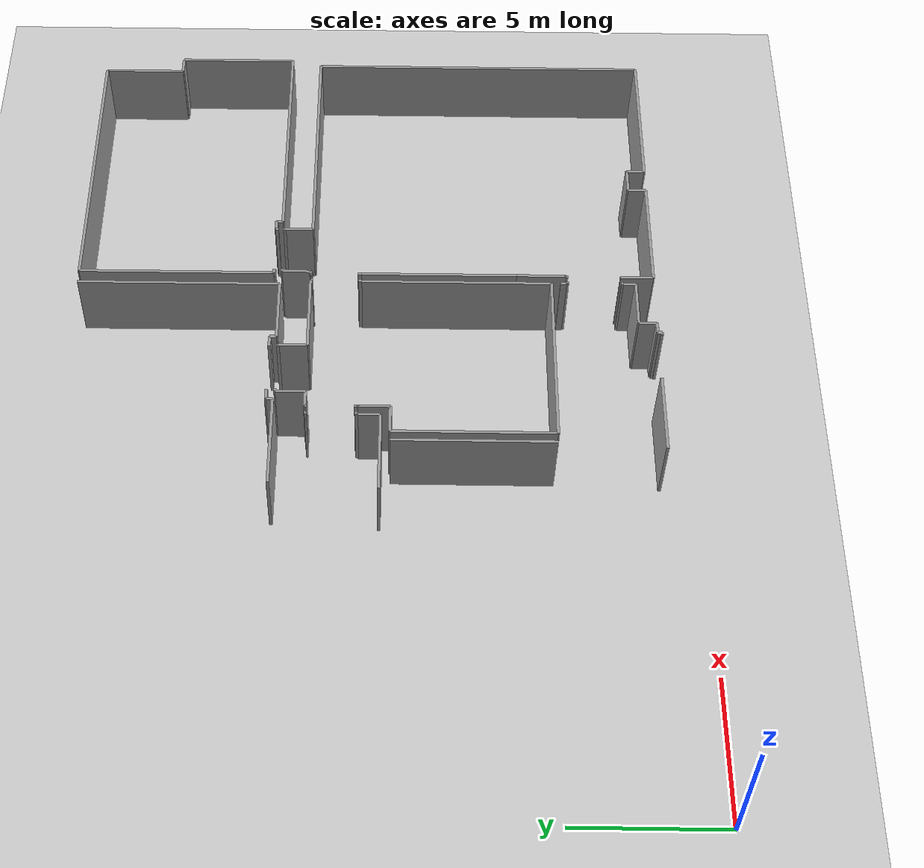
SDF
<sdf version="1.6">
 <world name="default">
  <model name="ground_plane">
   <static>1</static>
   <link name="link">
    <collision name="collision">
     <geometry><plane><normal>0 0 1</normal><size>100 100</size></plane></geometry>
     <surface><friction><ode><mu>100</mu><mu2>50</mu2></ode></friction></surface>
    </collision>
    <visual name="visual">
     <cast_shadows>0</cast_shadows>
     <geometry><plane><normal>0 0 1</normal><size>100 100</size></plane></geometry>
     <material>
      <script><uri>file://media/materials/scripts/gazebo.material</uri><name>Gazebo/Grey</name></script>
     </material>
    </visual>
   </link>
  </model>
  <model name="0510032259_A_40_1_101">
   <static>1</static>
   <link name="Wall_66">
    <collision name="Wall_66_Collision">
     <geometry><box><size>0.210516954428 0.1 2.5</size></box></geometry>
     <pose>0.105258477214 0 1.25 0 0 0</pose>
    </collision>
    <visual name="Wall_66_Visual">
     <pose>0.105258477214 0 1.25 0 0 0</pose>
     <geometry><box><size>0.210516954428 0.1 2.5</size></box></geometry>
     <material>
      <script><uri>file://media/materials/scripts/gazebo.material</uri><name>Gazebo/Grey</name></script>
      <ambient>1 1 1 1</ambient>
     </material>
    </visual>
    <pose>48.824941876 -16.4428097725 0 0 0 -1.57079632679</pose>
   </link>
   <link name="Wall_67">
    <collision name="Wall_67_Collision">
     <geometry><box><size>0.0287126322877 0.1 2.5</size></box></geometry>
     <pose>0.0143563161439 0 1.25 0 0 0</pose>
    </collision>
    <visual name="Wall_67_Visual">
     <pose>0.0143563161439 0 1.25 0 0 0</pose>
     <geometry><box><size>0.0287126322877 0.1 2.5</size></box></geometry>
     <material>
      <script><uri>file://media/materials/scripts/gazebo.material</uri><name>Gazebo/Grey</name></script>
      <ambient>1 1 1 1</ambient>
     </material>
    </visual>
    <pose>48.824941876 -16.6533267269 0 0 0 0.0</pose>
   </link>
   <link name="Wall_68">
    <collision name="Wall_68_Collision">
     <geometry><box><size>0.0763552743581 0.1 2.5</size></box></geometry>
     <pose>0.038177637179 0 1.25 0 0 0</pose>
    </collision>
    <visual name="Wall_68_Visual">
     <pose>0.038177637179 0 1.25 0 0 0</pose>
     <geometry><box><size>0.0763552743581 0.1 2.5</size></box></geometry>
     <material>
      <script><uri>file://media/materials/scripts/gazebo.material</uri><name>Gazebo/Grey</name></script>
      <ambient>1 1 1 1</ambient>
     </material>
    </visual>
    <pose>48.8536545083 -16.6533267269 0 0 0 -1.57079632679</pose>
   </link>
   <link name="Wall_69">
    <collision name="Wall_69_Collision">
     <geometry><box><size>0.0694947339 0.1 2.5</size></box></geometry>
     <pose>0.03474736695 0 1.25 0 0 0</pose>
    </collision>
    <visual name="Wall_69_Visual">
     <pose>0.03474736695 0 1.25 0 0 0</pose>
     <geometry><box><size>0.0694947339 0.1 2.5</size></box></geometry>
     <material>
      <script><uri>file://media/materials/scripts/gazebo.material</uri><name>Gazebo/Grey</name></script>
      <ambient>1 1 1 1</ambient>
     </material>
    </visual>
    <pose>48.8536545083 -18.5199019197 0 0 0 -1.57079632679</pose>
   </link>
   <link name="Wall_70">
    <collision name="Wall_70_Collision">
     <geometry><box><size>0.0226143741027 0.1 2.5</size></box></geometry>
     <pose>0.0113071870514 0 1.25 0 0 0</pose>
    </collision>
    <visual name="Wall_70_Visual">
     <pose>0.0113071870514 0 1.25 0 0 0</pose>
     <geometry><box><size>0.0226143741027 0.1 2.5</size></box></geometry>
     <material>
      <script><uri>file://media/materials/scripts/gazebo.material</uri><name>Gazebo/Grey</name></script>
      <ambient>1 1 1 1</ambient>
     </material>
    </visual>
    <pose>48.8536545083 -18.5893966536 0 0 0 3.14159265359</pose>
   </link>
   <link name="Wall_71">
    <collision name="Wall_71_Collision">
     <geometry><box><size>0.416841356354 0.1 2.5</size></box></geometry>
     <pose>0.208420678177 0 1.25 0 0 0</pose>
    </collision>
    <visual name="Wall_71_Visual">
     <pose>0.208420678177 0 1.25 0 0 0</pose>
     <geometry><box><size>0.416841356354 0.1 2.5</size></box></geometry>
     <material>
      <script><uri>file://media/materials/scripts/gazebo.material</uri><name>Gazebo/Grey</name></script>
      <ambient>1 1 1 1</ambient>
     </material>
    </visual>
    <pose>48.8310401342 -18.5893966536 0 0 0 -1.57079632679</pose>
   </link>
   <link name="Wall_72">
    <collision name="Wall_72_Collision">
     <geometry><box><size>1.67587757747 0.1 2.5</size></box></geometry>
     <pose>0.837938788733 0 1.25 0 0 0</pose>
    </collision>
    <visual name="Wall_72_Visual">
     <pose>0.837938788733 0 1.25 0 0 0</pose>
     <geometry><box><size>1.67587757747 0.1 2.5</size></box></geometry>
     <material>
      <script><uri>file://media/materials/scripts/gazebo.material</uri><name>Gazebo/Grey</name></script>
      <ambient>1 1 1 1</ambient>
     </material>
    </visual>
    <pose>48.8310401342 -19.0062380099 0 0 0 3.14159265359</pose>
   </link>
   <link name="Wall_73">
    <collision name="Wall_73_Collision">
     <geometry><box><size>0.605887360089 0.1 2.5</size></box></geometry>
     <pose>0.302943680045 0 1.25 0 0 0</pose>
    </collision>
    <visual name="Wall_73_Visual">
     <pose>0.302943680045 0 1.25 0 0 0</pose>
     <geometry><box><size>0.605887360089 0.1 2.5</size></box></geometry>
     <material>
      <script><uri>file://media/materials/scripts/gazebo.material</uri><name>Gazebo/Grey</name></script>
      <ambient>1 1 1 1</ambient>
     </material>
    </visual>
    <pose>47.1551625567 -19.0062380099 0 0 0 -1.57079632679</pose>
   </link>
   <link name="Wall_74">
    <collision name="Wall_74_Collision">
     <geometry><box><size>0.401722757937 0.1 2.5</size></box></geometry>
     <pose>0.200861378969 0 1.25 0 0 0</pose>
    </collision>
    <visual name="Wall_74_Visual">
     <pose>0.200861378969 0 1.25 0 0 0</pose>
     <geometry><box><size>0.401722757937 0.1 2.5</size></box></geometry>
     <material>
      <script><uri>file://media/materials/scripts/gazebo.material</uri><name>Gazebo/Grey</name></script>
      <ambient>1 1 1 1</ambient>
     </material>
    </visual>
    <pose>47.1551625567 -19.61212537 0 0 0 3.14159265359</pose>
   </link>
   <link name="Wall_75">
    <collision name="Wall_75_Collision">
     <geometry><box><size>0.140768126437 0.1 2.5</size></box></geometry>
     <pose>0.0703840632186 0 1.25 0 0 0</pose>
    </collision>
    <visual name="Wall_75_Visual">
     <pose>0.0703840632186 0 1.25 0 0 0</pose>
     <geometry><box><size>0.140768126437 0.1 2.5</size></box></geometry>
     <material>
      <script><uri>file://media/materials/scripts/gazebo.material</uri><name>Gazebo/Grey</name></script>
      <ambient>1 1 1 1</ambient>
     </material>
    </visual>
    <pose>46.7534397988 -19.61212537 0 0 0 -1.57079632679</pose>
   </link>
   <link name="Wall_76">
    <collision name="Wall_76_Collision">
     <geometry><box><size>0.0847403793625 0.1 2.5</size></box></geometry>
     <pose>0.0423701896812 0 1.25 0 0 0</pose>
    </collision>
    <visual name="Wall_76_Visual">
     <pose>0.0423701896812 0 1.25 0 0 0</pose>
     <geometry><box><size>0.0847403793625 0.1 2.5</size></box></geometry>
     <material>
      <script><uri>file://media/materials/scripts/gazebo.material</uri><name>Gazebo/Grey</name></script>
      <ambient>1 1 1 1</ambient>
     </material>
    </visual>
    <pose>46.7534397988 -19.7528934965 0 0 0 3.14159265359</pose>
   </link>
   <link name="Wall_79">
    <collision name="Wall_79_Collision">
     <geometry><box><size>2.7982111776 0.1 2.5</size></box></geometry>
     <pose>1.3991055888 0 1.25 0 0 0</pose>
    </collision>
    <visual name="Wall_79_Visual">
     <pose>1.3991055888 0 1.25 0 0 0</pose>
     <geometry><box><size>2.7982111776 0.1 2.5</size></box></geometry>
     <material>
      <script><uri>file://media/materials/scripts/gazebo.material</uri><name>Gazebo/Grey</name></script>
      <ambient>1 1 1 1</ambient>
     </material>
    </visual>
    <pose>44.8505291509 -19.6128876523 0 0 0 3.14159265359</pose>
   </link>
   <link name="Wall_169">
    <collision name="Wall_169_Collision">
     <geometry><box><size>5.394925741 0.1 2.5</size></box></geometry>
     <pose>2.6974628705 0 1.25 0 0 0</pose>
    </collision>
    <visual name="Wall_169_Visual">
     <pose>2.6974628705 0 1.25 0 0 0</pose>
     <geometry><box><size>5.394925741 0.1 2.5</size></box></geometry>
     <material>
      <script><uri>file://media/materials/scripts/gazebo.material</uri><name>Gazebo/Grey</name></script>
      <ambient>1 1 1 1</ambient>
     </material>
    </visual>
    <pose>42.249622035 -10.7335696408 0 0 0 -1.57079632679</pose>
   </link>
   <link name="Wall_201">
    <collision name="Wall_201_Collision">
     <geometry><box><size>0.0664456048075 0.1 2.5</size></box></geometry>
     <pose>0.0332228024037 0 1.25 0 0 0</pose>
    </collision>
    <visual name="Wall_201_Visual">
     <pose>0.0332228024037 0 1.25 0 0 0</pose>
     <geometry><box><size>0.0664456048075 0.1 2.5</size></box></geometry>
     <material>
      <script><uri>file://media/materials/scripts/gazebo.material</uri><name>Gazebo/Grey</name></script>
      <ambient>1 1 1 1</ambient>
     </material>
    </visual>
    <pose>43.2753998806 -7.94374356824 0 0 0 -1.57079632679</pose>
   </link>
   <link name="Wall_202">
    <collision name="Wall_202_Collision">
     <geometry><box><size>0.0997319307339 0.1 2.5</size></box></geometry>
     <pose>0.049865965367 0 1.25 0 0 0</pose>
    </collision>
    <visual name="Wall_202_Visual">
     <pose>0.049865965367 0 1.25 0 0 0</pose>
     <geometry><box><size>0.0997319307339 0.1 2.5</size></box></geometry>
     <material>
      <script><uri>file://media/materials/scripts/gazebo.material</uri><name>Gazebo/Grey</name></script>
      <ambient>1 1 1 1</ambient>
     </material>
    </visual>
    <pose>43.2753998806 -9.5830315966 0 0 0 -1.57079632679</pose>
   </link>
   <link name="Wall_203">
    <collision name="Wall_203_Collision">
     <geometry><box><size>0.0331592788809 0.1 2.5</size></box></geometry>
     <pose>0.0165796394405 0 1.25 0 0 0</pose>
    </collision>
    <visual name="Wall_203_Visual">
     <pose>0.0165796394405 0 1.25 0 0 0</pose>
     <geometry><box><size>0.0331592788809 0.1 2.5</size></box></geometry>
     <material>
      <script><uri>file://media/materials/scripts/gazebo.material</uri><name>Gazebo/Grey</name></script>
      <ambient>1 1 1 1</ambient>
     </material>
    </visual>
    <pose>43.2753998806 -9.68276352733 0 0 0 3.14159265359</pose>
   </link>
   <link name="Wall_204">
    <collision name="Wall_204_Collision">
     <geometry><box><size>0.727344335607 0.1 2.5</size></box></geometry>
     <pose>0.363672167804 0 1.25 0 0 0</pose>
    </collision>
    <visual name="Wall_204_Visual">
     <pose>0.363672167804 0 1.25 0 0 0</pose>
     <geometry><box><size>0.727344335607 0.1 2.5</size></box></geometry>
     <material>
      <script><uri>file://media/materials/scripts/gazebo.material</uri><name>Gazebo/Grey</name></script>
      <ambient>1 1 1 1</ambient>
     </material>
    </visual>
    <pose>43.2422406017 -9.68276352733 0 0 0 -1.57079632679</pose>
   </link>
   <link name="Wall_205">
    <collision name="Wall_205_Collision">
     <geometry><box><size>2.86634063001 0.1 2.5</size></box></geometry>
     <pose>1.43317031501 0 1.25 0 0 0</pose>
    </collision>
    <visual name="Wall_205_Visual">
     <pose>1.43317031501 0 1.25 0 0 0</pose>
     <geometry><box><size>2.86634063001 0.1 2.5</size></box></geometry>
     <material>
      <script><uri>file://media/materials/scripts/gazebo.material</uri><name>Gazebo/Grey</name></script>
      <ambient>1 1 1 1</ambient>
     </material>
    </visual>
    <pose>43.2422406017 -10.4101078629 0 0 0 3.13684999157</pose>
   </link>
   <link name="Wall_206">
    <collision name="Wall_206_Collision">
     <geometry><box><size>5.40928205715 0.1 2.5</size></box></geometry>
     <pose>2.70464102857 0 1.25 0 0 0</pose>
    </collision>
    <visual name="Wall_206_Visual">
     <pose>2.70464102857 0 1.25 0 0 0</pose>
     <geometry><box><size>5.40928205715 0.1 2.5</size></box></geometry>
     <material>
      <script><uri>file://media/materials/scripts/gazebo.material</uri><name>Gazebo/Grey</name></script>
      <ambient>1 1 1 1</ambient>
     </material>
    </visual>
    <pose>42.5854073764 -16.1353559223 0 0 0 1.57079632679</pose>
   </link>
   <link name="Wall_207">
    <collision name="Wall_207_Collision">
     <geometry><box><size>0.980930238467 0.1 2.5</size></box></geometry>
     <pose>0.490465119234 0 1.25 0 0 0</pose>
    </collision>
    <visual name="Wall_207_Visual">
     <pose>0.490465119234 0 1.25 0 0 0</pose>
     <geometry><box><size>0.980930238467 0.1 2.5</size></box></geometry>
     <material>
      <script><uri>file://media/materials/scripts/gazebo.material</uri><name>Gazebo/Grey</name></script>
      <ambient>1 1 1 1</ambient>
     </material>
    </visual>
    <pose>42.5854073764 -10.7260738652 0 0 0 0.0</pose>
   </link>
   <link name="Wall_208">
    <collision name="Wall_208_Collision">
     <geometry><box><size>1.06554357078 0.1 2.5</size></box></geometry>
     <pose>0.532771785392 0 1.25 0 0 0</pose>
    </collision>
    <visual name="Wall_208_Visual">
     <pose>0.532771785392 0 1.25 0 0 0</pose>
     <geometry><box><size>1.06554357078 0.1 2.5</size></box></geometry>
     <material>
      <script><uri>file://media/materials/scripts/gazebo.material</uri><name>Gazebo/Grey</name></script>
      <ambient>1 1 1 1</ambient>
     </material>
    </visual>
    <pose>43.5663376148 -10.7260738652 0 0 0 1.57079632679</pose>
   </link>
   <link name="Wall_209">
    <collision name="Wall_209_Collision">
     <geometry><box><size>0.0154997395536 0.1 2.5</size></box></geometry>
     <pose>0.00774986977679 0 1.25 0 0 0</pose>
    </collision>
    <visual name="Wall_209_Visual">
     <pose>0.00774986977679 0 1.25 0 0 0</pose>
     <geometry><box><size>0.0154997395536 0.1 2.5</size></box></geometry>
     <material>
      <script><uri>file://media/materials/scripts/gazebo.material</uri><name>Gazebo/Grey</name></script>
      <ambient>1 1 1 1</ambient>
     </material>
    </visual>
    <pose>43.5663376148 -9.66053029437 0 0 0 3.14159265359</pose>
   </link>
   <link name="Wall_210">
    <collision name="Wall_210_Collision">
     <geometry><box><size>0.104432671418 0.1 2.5</size></box></geometry>
     <pose>0.0522163357091 0 1.25 0 0 0</pose>
    </collision>
    <visual name="Wall_210_Visual">
     <pose>0.0522163357091 0 1.25 0 0 0</pose>
     <geometry><box><size>0.104432671418 0.1 2.5</size></box></geometry>
     <material>
      <script><uri>file://media/materials/scripts/gazebo.material</uri><name>Gazebo/Grey</name></script>
      <ambient>1 1 1 1</ambient>
     </material>
    </visual>
    <pose>43.5508378753 -9.66053029437 0 0 0 1.57079632679</pose>
   </link>
   <link name="Wall_211">
    <collision name="Wall_211_Collision">
     <geometry><box><size>0.0471344538883 0.1 2.5</size></box></geometry>
     <pose>0.0235672269441 0 1.25 0 0 0</pose>
    </collision>
    <visual name="Wall_211_Visual">
     <pose>0.0235672269441 0 1.25 0 0 0</pose>
     <geometry><box><size>0.0471344538883 0.1 2.5</size></box></geometry>
     <material>
      <script><uri>file://media/materials/scripts/gazebo.material</uri><name>Gazebo/Grey</name></script>
      <ambient>1 1 1 1</ambient>
     </material>
    </visual>
    <pose>43.5508378753 -7.99202144554 0 0 0 1.57079632679</pose>
   </link>
   <link name="Wall_212">
    <collision name="Wall_212_Collision">
     <geometry><box><size>0.577301774847 0.1 2.5</size></box></geometry>
     <pose>0.288650887424 0 1.25 0 0 0</pose>
    </collision>
    <visual name="Wall_212_Visual">
     <pose>0.288650887424 0 1.25 0 0 0</pose>
     <geometry><box><size>0.577301774847 0.1 2.5</size></box></geometry>
     <material>
      <script><uri>file://media/materials/scripts/gazebo.material</uri><name>Gazebo/Grey</name></script>
      <ambient>1 1 1 1</ambient>
     </material>
    </visual>
    <pose>43.5508378753 -7.94488699165 0 0 0 0.0</pose>
   </link>
   <link name="Wall_213">
    <collision name="Wall_213_Collision">
     <geometry><box><size>0.988934202335 0.1 2.5</size></box></geometry>
     <pose>0.494467101168 0 1.25 0 0 0</pose>
    </collision>
    <visual name="Wall_213_Visual">
     <pose>0.494467101168 0 1.25 0 0 0</pose>
     <geometry><box><size>0.988934202335 0.1 2.5</size></box></geometry>
     <material>
      <script><uri>file://media/materials/scripts/gazebo.material</uri><name>Gazebo/Grey</name></script>
      <ambient>1 1 1 1</ambient>
     </material>
    </visual>
    <pose>44.1281396501 -7.94488699165 0 0 0 1.57079632679</pose>
   </link>
   <link name="Wall_214">
    <collision name="Wall_214_Collision">
     <geometry><box><size>0.097063942778 0.1 2.5</size></box></geometry>
     <pose>0.048531971389 0 1.25 0 0 0</pose>
    </collision>
    <visual name="Wall_214_Visual">
     <pose>0.048531971389 0 1.25 0 0 0</pose>
     <geometry><box><size>0.097063942778 0.1 2.5</size></box></geometry>
     <material>
      <script><uri>file://media/materials/scripts/gazebo.material</uri><name>Gazebo/Grey</name></script>
      <ambient>1 1 1 1</ambient>
     </material>
    </visual>
    <pose>44.1281396501 -6.95595278932 0 0 0 0.0</pose>
   </link>
   <link name="Wall_215">
    <collision name="Wall_215_Collision">
     <geometry><box><size>0.0598391584404 0.1 2.5</size></box></geometry>
     <pose>0.0299195792202 0 1.25 0 0 0</pose>
    </collision>
    <visual name="Wall_215_Visual">
     <pose>0.0299195792202 0 1.25 0 0 0</pose>
     <geometry><box><size>0.0598391584404 0.1 2.5</size></box></geometry>
     <material>
      <script><uri>file://media/materials/scripts/gazebo.material</uri><name>Gazebo/Grey</name></script>
      <ambient>1 1 1 1</ambient>
     </material>
    </visual>
    <pose>45.9823912795 -6.95595278932 0 0 0 0.0</pose>
   </link>
   <link name="Wall_216">
    <collision name="Wall_216_Collision">
     <geometry><box><size>0.980676144376 0.1 2.5</size></box></geometry>
     <pose>0.490338072188 0 1.25 0 0 0</pose>
    </collision>
    <visual name="Wall_216_Visual">
     <pose>0.490338072188 0 1.25 0 0 0</pose>
     <geometry><box><size>0.980676144376 0.1 2.5</size></box></geometry>
     <material>
      <script><uri>file://media/materials/scripts/gazebo.material</uri><name>Gazebo/Grey</name></script>
      <ambient>1 1 1 1</ambient>
     </material>
    </visual>
    <pose>46.0422304379 -6.95595278932 0 0 0 -1.57079632679</pose>
   </link>
   <link name="Wall_217">
    <collision name="Wall_217_Collision">
     <geometry><box><size>2.80265782419 0.1 2.5</size></box></geometry>
     <pose>1.4013289121 0 1.25 0 0 0</pose>
    </collision>
    <visual name="Wall_217_Visual">
     <pose>1.4013289121 0 1.25 0 0 0</pose>
     <geometry><box><size>2.80265782419 0.1 2.5</size></box></geometry>
     <material>
      <script><uri>file://media/materials/scripts/gazebo.material</uri><name>Gazebo/Grey</name></script>
      <ambient>1 1 1 1</ambient>
     </material>
    </visual>
    <pose>46.0422304379 -7.93662893369 0 0 0 0.0</pose>
   </link>
   <link name="Wall_218">
    <collision name="Wall_218_Collision">
     <geometry><box><size>0.0766093684491 0.1 2.5</size></box></geometry>
     <pose>0.0383046842246 0 1.25 0 0 0</pose>
    </collision>
    <visual name="Wall_218_Visual">
     <pose>0.0383046842246 0 1.25 0 0 0</pose>
     <geometry><box><size>0.0766093684491 0.1 2.5</size></box></geometry>
     <material>
      <script><uri>file://media/materials/scripts/gazebo.material</uri><name>Gazebo/Grey</name></script>
      <ambient>1 1 1 1</ambient>
     </material>
    </visual>
    <pose>48.8448882621 -7.93662893369 0 0 0 -1.57079632679</pose>
   </link>
   <link name="Wall_219">
    <collision name="Wall_219_Collision">
     <geometry><box><size>0.104432671418 0.1 2.5</size></box></geometry>
     <pose>0.0522163357091 0 1.25 0 0 0</pose>
    </collision>
    <visual name="Wall_219_Visual">
     <pose>0.0522163357091 0 1.25 0 0 0</pose>
     <geometry><box><size>0.104432671418 0.1 2.5</size></box></geometry>
     <material>
      <script><uri>file://media/materials/scripts/gazebo.material</uri><name>Gazebo/Grey</name></script>
      <ambient>1 1 1 1</ambient>
     </material>
    </visual>
    <pose>48.8448882621 -9.57985542046 0 0 0 -1.57079632679</pose>
   </link>
   <link name="Wall_220">
    <collision name="Wall_220_Collision">
     <geometry><box><size>0.0249012209221 0.1 2.5</size></box></geometry>
     <pose>0.0124506104611 0 1.25 0 0 0</pose>
    </collision>
    <visual name="Wall_220_Visual">
     <pose>0.0124506104611 0 1.25 0 0 0</pose>
     <geometry><box><size>0.0249012209221 0.1 2.5</size></box></geometry>
     <material>
      <script><uri>file://media/materials/scripts/gazebo.material</uri><name>Gazebo/Grey</name></script>
      <ambient>1 1 1 1</ambient>
     </material>
    </visual>
    <pose>48.8448882621 -9.68428809188 0 0 0 3.14159265359</pose>
   </link>
   <link name="Wall_221">
    <collision name="Wall_221_Collision">
     <geometry><box><size>6.45665790042 0.1 2.5</size></box></geometry>
     <pose>3.22832895021 0 1.25 0 0 0</pose>
    </collision>
    <visual name="Wall_221_Visual">
     <pose>3.22832895021 0 1.25 0 0 0</pose>
     <geometry><box><size>6.45665790042 0.1 2.5</size></box></geometry>
     <material>
      <script><uri>file://media/materials/scripts/gazebo.material</uri><name>Gazebo/Grey</name></script>
      <ambient>1 1 1 1</ambient>
     </material>
    </visual>
    <pose>48.8199870412 -9.68428809188 0 0 0 -1.57079632679</pose>
   </link>
   <link name="Wall_222">
    <collision name="Wall_222_Collision">
     <geometry><box><size>6.23458217094 0.1 2.5</size></box></geometry>
     <pose>3.11729108547 0 1.25 0 0 0</pose>
    </collision>
    <visual name="Wall_222_Visual">
     <pose>3.11729108547 0 1.25 0 0 0</pose>
     <geometry><box><size>6.23458217094 0.1 2.5</size></box></geometry>
     <material>
      <script><uri>file://media/materials/scripts/gazebo.material</uri><name>Gazebo/Grey</name></script>
      <ambient>1 1 1 1</ambient>
     </material>
    </visual>
    <pose>48.8199870412 -16.1409459923 0 0 0 3.14069603043</pose>
   </link>
   <link name="Wall_225">
    <collision name="Wall_225_Collision">
     <geometry><box><size>6.8897612786 0.1 2.5</size></box></geometry>
     <pose>3.4448806393 0 1.25 0 0 0</pose>
    </collision>
    <visual name="Wall_225_Visual">
     <pose>3.4448806393 0 1.25 0 0 0</pose>
     <geometry><box><size>6.8897612786 0.1 2.5</size></box></geometry>
     <material>
      <script><uri>file://media/materials/scripts/gazebo.material</uri><name>Gazebo/Grey</name></script>
      <ambient>1 1 1 1</ambient>
     </material>
    </visual>
    <pose>48.6667683043 -0.0 0 0 0 -1.57079632679</pose>
   </link>
   <link name="Wall_226">
    <collision name="Wall_226_Collision">
     <geometry><box><size>2.27312573846 0.1 2.5</size></box></geometry>
     <pose>1.13656286923 0 1.25 0 0 0</pose>
    </collision>
    <visual name="Wall_226_Visual">
     <pose>1.13656286923 0 1.25 0 0 0</pose>
     <geometry><box><size>2.27312573846 0.1 2.5</size></box></geometry>
     <material>
      <script><uri>file://media/materials/scripts/gazebo.material</uri><name>Gazebo/Grey</name></script>
      <ambient>1 1 1 1</ambient>
     </material>
    </visual>
    <pose>48.6667683043 -6.8897612786 0 0 0 3.14159265359</pose>
   </link>
   <link name="Wall_227">
    <collision name="Wall_227_Collision">
     <geometry><box><size>0.223475753071 0.1 2.5</size></box></geometry>
     <pose>0.111737876536 0 1.25 0 0 0</pose>
    </collision>
    <visual name="Wall_227_Visual">
     <pose>0.111737876536 0 1.25 0 0 0</pose>
     <geometry><box><size>0.223475753071 0.1 2.5</size></box></geometry>
     <material>
      <script><uri>file://media/materials/scripts/gazebo.material</uri><name>Gazebo/Grey</name></script>
      <ambient>1 1 1 1</ambient>
     </material>
    </visual>
    <pose>46.3936425658 -6.8897612786 0 0 0 1.57079632679</pose>
   </link>
   <link name="Wall_228">
    <collision name="Wall_228_Collision">
     <geometry><box><size>0.411759474533 0.1 2.5</size></box></geometry>
     <pose>0.205879737267 0 1.25 0 0 0</pose>
    </collision>
    <visual name="Wall_228_Visual">
     <pose>0.205879737267 0 1.25 0 0 0</pose>
     <geometry><box><size>0.411759474533 0.1 2.5</size></box></geometry>
     <material>
      <script><uri>file://media/materials/scripts/gazebo.material</uri><name>Gazebo/Grey</name></script>
      <ambient>1 1 1 1</ambient>
     </material>
    </visual>
    <pose>46.3936425658 -6.66628552553 0 0 0 3.14159265359</pose>
   </link>
   <link name="Wall_229">
    <collision name="Wall_229_Collision">
     <geometry><box><size>0.382284559973 0.1 2.5</size></box></geometry>
     <pose>0.191142279986 0 1.25 0 0 0</pose>
    </collision>
    <visual name="Wall_229_Visual">
     <pose>0.191142279986 0 1.25 0 0 0</pose>
     <geometry><box><size>0.382284559973 0.1 2.5</size></box></geometry>
     <material>
      <script><uri>file://media/materials/scripts/gazebo.material</uri><name>Gazebo/Grey</name></script>
      <ambient>1 1 1 1</ambient>
     </material>
    </visual>
    <pose>44.1978884781 -6.66628552553 0 0 0 3.14159265359</pose>
   </link>
   <link name="Wall_230">
    <collision name="Wall_230_Collision">
     <geometry><box><size>0.221061859206 0.1 2.5</size></box></geometry>
     <pose>0.110530929603 0 1.25 0 0 0</pose>
    </collision>
    <visual name="Wall_230_Visual">
     <pose>0.110530929603 0 1.25 0 0 0</pose>
     <geometry><box><size>0.221061859206 0.1 2.5</size></box></geometry>
     <material>
      <script><uri>file://media/materials/scripts/gazebo.material</uri><name>Gazebo/Grey</name></script>
      <ambient>1 1 1 1</ambient>
     </material>
    </visual>
    <pose>43.8156039181 -6.66628552553 0 0 0 -1.57079632679</pose>
   </link>
   <link name="Wall_231">
    <collision name="Wall_231_Collision">
     <geometry><box><size>3.26549110322 0.1 2.5</size></box></geometry>
     <pose>1.63274555161 0 1.25 0 0 0</pose>
    </collision>
    <visual name="Wall_231_Visual">
     <pose>1.63274555161 0 1.25 0 0 0</pose>
     <geometry><box><size>3.26549110322 0.1 2.5</size></box></geometry>
     <material>
      <script><uri>file://media/materials/scripts/gazebo.material</uri><name>Gazebo/Grey</name></script>
      <ambient>1 1 1 1</ambient>
     </material>
    </visual>
    <pose>43.8156039181 -6.88734738474 0 0 0 3.1408534404</pose>
   </link>
   <link name="Wall_232">
    <collision name="Wall_232_Collision">
     <geometry><box><size>5.29125535186 0.1 2.5</size></box></geometry>
     <pose>2.64562767593 0 1.25 0 0 0</pose>
    </collision>
    <visual name="Wall_232_Visual">
     <pose>2.64562767593 0 1.25 0 0 0</pose>
     <geometry><box><size>5.29125535186 0.1 2.5</size></box></geometry>
     <material>
      <script><uri>file://media/materials/scripts/gazebo.material</uri><name>Gazebo/Grey</name></script>
      <ambient>1 1 1 1</ambient>
     </material>
    </visual>
    <pose>49.1503093596 -14.9586461867 0 0 0 1.57079632679</pose>
   </link>
   <link name="Wall_233">
    <collision name="Wall_233_Collision">
     <geometry><box><size>0.0191841038736 0.1 2.5</size></box></geometry>
     <pose>0.00959205193682 0 1.25 0 0 0</pose>
    </collision>
    <visual name="Wall_233_Visual">
     <pose>0.00959205193682 0 1.25 0 0 0</pose>
     <geometry><box><size>0.0191841038736 0.1 2.5</size></box></geometry>
     <material>
      <script><uri>file://media/materials/scripts/gazebo.material</uri><name>Gazebo/Grey</name></script>
      <ambient>1 1 1 1</ambient>
     </material>
    </visual>
    <pose>49.1503093596 -9.66739083483 0 0 0 3.14159265359</pose>
   </link>
   <link name="Wall_234">
    <collision name="Wall_234_Collision">
     <geometry><box><size>0.122727445973 0.1 2.5</size></box></geometry>
     <pose>0.0613637229866 0 1.25 0 0 0</pose>
    </collision>
    <visual name="Wall_234_Visual">
     <pose>0.0613637229866 0 1.25 0 0 0</pose>
     <geometry><box><size>0.122727445973 0.1 2.5</size></box></geometry>
     <material>
      <script><uri>file://media/materials/scripts/gazebo.material</uri><name>Gazebo/Grey</name></script>
      <ambient>1 1 1 1</ambient>
     </material>
    </visual>
    <pose>49.1311252557 -9.66739083483 0 0 0 1.57079632679</pose>
   </link>
   <link name="Wall_235">
    <collision name="Wall_235_Collision">
     <geometry><box><size>0.0522163357091 0.1 2.5</size></box></geometry>
     <pose>0.0261081678546 0 1.25 0 0 0</pose>
    </collision>
    <visual name="Wall_235_Visual">
     <pose>0.0261081678546 0 1.25 0 0 0</pose>
     <geometry><box><size>0.0522163357091 0.1 2.5</size></box></geometry>
     <material>
      <script><uri>file://media/materials/scripts/gazebo.material</uri><name>Gazebo/Grey</name></script>
      <ambient>1 1 1 1</ambient>
     </material>
    </visual>
    <pose>49.1311252557 -7.99125916327 0 0 0 1.57079632679</pose>
   </link>
   <link name="Wall_236">
    <collision name="Wall_236_Collision">
     <geometry><box><size>0.102145824599 0.1 2.5</size></box></geometry>
     <pose>0.0510729122994 0 1.25 0 0 0</pose>
    </collision>
    <visual name="Wall_236_Visual">
     <pose>0.0510729122994 0 1.25 0 0 0</pose>
     <geometry><box><size>0.102145824599 0.1 2.5</size></box></geometry>
     <material>
      <script><uri>file://media/materials/scripts/gazebo.material</uri><name>Gazebo/Grey</name></script>
      <ambient>1 1 1 1</ambient>
     </material>
    </visual>
    <pose>49.1311252557 -7.93904282756 0 0 0 0.0</pose>
   </link>
   <link name="Wall_237">
    <collision name="Wall_237_Collision">
     <geometry><box><size>0.985503932106 0.1 2.5</size></box></geometry>
     <pose>0.492751966053 0 1.25 0 0 0</pose>
    </collision>
    <visual name="Wall_237_Visual">
     <pose>0.492751966053 0 1.25 0 0 0</pose>
     <geometry><box><size>0.985503932106 0.1 2.5</size></box></geometry>
     <material>
      <script><uri>file://media/materials/scripts/gazebo.material</uri><name>Gazebo/Grey</name></script>
      <ambient>1 1 1 1</ambient>
     </material>
    </visual>
    <pose>49.2332710803 -7.93904282756 0 0 0 1.57079632679</pose>
   </link>
   <link name="Wall_238">
    <collision name="Wall_238_Collision">
     <geometry><box><size>0.087789508455 0.1 2.5</size></box></geometry>
     <pose>0.0438947542275 0 1.25 0 0 0</pose>
    </collision>
    <visual name="Wall_238_Visual">
     <pose>0.0438947542275 0 1.25 0 0 0</pose>
     <geometry><box><size>0.087789508455 0.1 2.5</size></box></geometry>
     <material>
      <script><uri>file://media/materials/scripts/gazebo.material</uri><name>Gazebo/Grey</name></script>
      <ambient>1 1 1 1</ambient>
     </material>
    </visual>
    <pose>49.2332710803 -6.95353889545 0 0 0 0.0</pose>
   </link>
   <link name="Wall_239">
    <collision name="Wall_239_Collision">
     <geometry><box><size>0.0545031825285 0.1 2.5</size></box></geometry>
     <pose>0.0272515912642 0 1.25 0 0 0</pose>
    </collision>
    <visual name="Wall_239_Visual">
     <pose>0.0272515912642 0 1.25 0 0 0</pose>
     <geometry><box><size>0.0545031825285 0.1 2.5</size></box></geometry>
     <material>
      <script><uri>file://media/materials/scripts/gazebo.material</uri><name>Gazebo/Grey</name></script>
      <ambient>1 1 1 1</ambient>
     </material>
    </visual>
    <pose>51.0904447917 -6.95353889545 0 0 0 0.0</pose>
   </link>
   <link name="Wall_240">
    <collision name="Wall_240_Collision">
     <geometry><box><size>0.981311379604 0.1 2.5</size></box></geometry>
     <pose>0.490655689802 0 1.25 0 0 0</pose>
    </collision>
    <visual name="Wall_240_Visual">
     <pose>0.490655689802 0 1.25 0 0 0</pose>
     <geometry><box><size>0.981311379604 0.1 2.5</size></box></geometry>
     <material>
      <script><uri>file://media/materials/scripts/gazebo.material</uri><name>Gazebo/Grey</name></script>
      <ambient>1 1 1 1</ambient>
     </material>
    </visual>
    <pose>51.1449479742 -6.95353889545 0 0 0 -1.57079632679</pose>
   </link>
   <link name="Wall_241">
    <collision name="Wall_241_Collision">
     <geometry><box><size>8.05097127466 0.1 2.5</size></box></geometry>
     <pose>4.02548563733 0 1.25 0 0 0</pose>
    </collision>
    <visual name="Wall_241_Visual">
     <pose>4.02548563733 0 1.25 0 0 0</pose>
     <geometry><box><size>8.05097127466 0.1 2.5</size></box></geometry>
     <material>
      <script><uri>file://media/materials/scripts/gazebo.material</uri><name>Gazebo/Grey</name></script>
      <ambient>1 1 1 1</ambient>
     </material>
    </visual>
    <pose>51.1449479742 -7.93485027506 0 0 0 0.0</pose>
   </link>
   <link name="Wall_242">
    <collision name="Wall_242_Collision">
     <geometry><box><size>11.6827381179 0.1 2.5</size></box></geometry>
     <pose>5.84136905896 0 1.25 0 0 0</pose>
    </collision>
    <visual name="Wall_242_Visual">
     <pose>5.84136905896 0 1.25 0 0 0</pose>
     <geometry><box><size>11.6827381179 0.1 2.5</size></box></geometry>
     <material>
      <script><uri>file://media/materials/scripts/gazebo.material</uri><name>Gazebo/Grey</name></script>
      <ambient>1 1 1 1</ambient>
     </material>
    </visual>
    <pose>59.1959192489 -7.93485027506 0 0 0 -1.57079632679</pose>
   </link>
   <link name="Wall_243">
    <collision name="Wall_243_Collision">
     <geometry><box><size>5.15061427247 0.1 2.5</size></box></geometry>
     <pose>2.57530713623 0 1.25 0 0 0</pose>
    </collision>
    <visual name="Wall_243_Visual">
     <pose>2.57530713623 0 1.25 0 0 0</pose>
     <geometry><box><size>5.15061427247 0.1 2.5</size></box></geometry>
     <material>
      <script><uri>file://media/materials/scripts/gazebo.material</uri><name>Gazebo/Grey</name></script>
      <ambient>1 1 1 1</ambient>
     </material>
    </visual>
    <pose>59.1959192489 -19.617588393 0 0 0 3.14159265359</pose>
   </link>
   <link name="Wall_244">
    <collision name="Wall_244_Collision">
     <geometry><box><size>0.614399512139 0.1 2.5</size></box></geometry>
     <pose>0.30719975607 0 1.25 0 0 0</pose>
    </collision>
    <visual name="Wall_244_Visual">
     <pose>0.30719975607 0 1.25 0 0 0</pose>
     <geometry><box><size>0.614399512139 0.1 2.5</size></box></geometry>
     <material>
      <script><uri>file://media/materials/scripts/gazebo.material</uri><name>Gazebo/Grey</name></script>
      <ambient>1 1 1 1</ambient>
     </material>
    </visual>
    <pose>54.0453049764 -19.617588393 0 0 0 1.57079632679</pose>
   </link>
   <link name="Wall_245">
    <collision name="Wall_245_Collision">
     <geometry><box><size>0.893140730012 0.1 2.5</size></box></geometry>
     <pose>0.446570365006 0 1.25 0 0 0</pose>
    </collision>
    <visual name="Wall_245_Visual">
     <pose>0.446570365006 0 1.25 0 0 0</pose>
     <geometry><box><size>0.893140730012 0.1 2.5</size></box></geometry>
     <material>
      <script><uri>file://media/materials/scripts/gazebo.material</uri><name>Gazebo/Grey</name></script>
      <ambient>1 1 1 1</ambient>
     </material>
    </visual>
    <pose>54.0453049764 -19.0031888808 0 0 0 3.14159265359</pose>
   </link>
   <link name="Wall_246">
    <collision name="Wall_246_Collision">
     <geometry><box><size>0.616051123731 0.1 2.5</size></box></geometry>
     <pose>0.308025561866 0 1.25 0 0 0</pose>
    </collision>
    <visual name="Wall_246_Visual">
     <pose>0.308025561866 0 1.25 0 0 0</pose>
     <geometry><box><size>0.616051123731 0.1 2.5</size></box></geometry>
     <material>
      <script><uri>file://media/materials/scripts/gazebo.material</uri><name>Gazebo/Grey</name></script>
      <ambient>1 1 1 1</ambient>
     </material>
    </visual>
    <pose>53.1521642464 -19.0031888808 0 0 0 -1.57079632679</pose>
   </link>
   <link name="Wall_247">
    <collision name="Wall_247_Collision">
     <geometry><box><size>4.01964147324 0.1 2.5</size></box></geometry>
     <pose>2.00982073662 0 1.25 0 0 0</pose>
    </collision>
    <visual name="Wall_247_Visual">
     <pose>2.00982073662 0 1.25 0 0 0</pose>
     <geometry><box><size>4.01964147324 0.1 2.5</size></box></geometry>
     <material>
      <script><uri>file://media/materials/scripts/gazebo.material</uri><name>Gazebo/Grey</name></script>
      <ambient>1 1 1 1</ambient>
     </material>
    </visual>
    <pose>53.1521642464 -19.6192400046 0 0 0 3.14159265359</pose>
   </link>
   <link name="Wall_248">
    <collision name="Wall_248_Collision">
     <geometry><box><size>1.12207950604 0.1 2.5</size></box></geometry>
     <pose>0.561039753021 0 1.25 0 0 0</pose>
    </collision>
    <visual name="Wall_248_Visual">
     <pose>0.561039753021 0 1.25 0 0 0</pose>
     <geometry><box><size>1.12207950604 0.1 2.5</size></box></geometry>
     <material>
      <script><uri>file://media/materials/scripts/gazebo.material</uri><name>Gazebo/Grey</name></script>
      <ambient>1 1 1 1</ambient>
     </material>
    </visual>
    <pose>49.1325227732 -19.6192400046 0 0 0 1.57079632679</pose>
   </link>
   <link name="Wall_249">
    <collision name="Wall_249_Collision">
     <geometry><box><size>0.0659374166254 0.1 2.5</size></box></geometry>
     <pose>0.0329687083127 0 1.25 0 0 0</pose>
    </collision>
    <visual name="Wall_249_Visual">
     <pose>0.0329687083127 0 1.25 0 0 0</pose>
     <geometry><box><size>0.0659374166254 0.1 2.5</size></box></geometry>
     <material>
      <script><uri>file://media/materials/scripts/gazebo.material</uri><name>Gazebo/Grey</name></script>
      <ambient>1 1 1 1</ambient>
     </material>
    </visual>
    <pose>49.1325227732 -16.7120224619 0 0 0 1.57079632679</pose>
   </link>
   <link name="Wall_250">
    <collision name="Wall_250_Collision">
     <geometry><box><size>0.0274421618325 0.1 2.5</size></box></geometry>
     <pose>0.0137210809163 0 1.25 0 0 0</pose>
    </collision>
    <visual name="Wall_250_Visual">
     <pose>0.0137210809163 0 1.25 0 0 0</pose>
     <geometry><box><size>0.0274421618325 0.1 2.5</size></box></geometry>
     <material>
      <script><uri>file://media/materials/scripts/gazebo.material</uri><name>Gazebo/Grey</name></script>
      <ambient>1 1 1 1</ambient>
     </material>
    </visual>
    <pose>49.1325227732 -16.6460850453 0 0 0 0.0</pose>
   </link>
   <link name="Wall_251">
    <collision name="Wall_251_Collision">
     <geometry><box><size>1.68746648313 0.1 2.5</size></box></geometry>
     <pose>0.843733241564 0 1.25 0 0 0</pose>
    </collision>
    <visual name="Wall_251_Visual">
     <pose>0.843733241564 0 1.25 0 0 0</pose>
     <geometry><box><size>1.68746648313 0.1 2.5</size></box></geometry>
     <material>
      <script><uri>file://media/materials/scripts/gazebo.material</uri><name>Gazebo/Grey</name></script>
      <ambient>1 1 1 1</ambient>
     </material>
    </visual>
    <pose>49.159964935 -16.6460850453 0 0 0 1.57651829416</pose>
   </link>
   <link name="Wall_252">
    <collision name="Wall_252_Collision">
     <geometry><box><size>6.65675699712 0.1 2.5</size></box></geometry>
     <pose>3.32837849856 0 1.25 0 0 0</pose>
    </collision>
    <visual name="Wall_252_Visual">
     <pose>3.32837849856 0 1.25 0 0 0</pose>
     <geometry><box><size>6.65675699712 0.1 2.5</size></box></geometry>
     <material>
      <script><uri>file://media/materials/scripts/gazebo.material</uri><name>Gazebo/Grey</name></script>
      <ambient>1 1 1 1</ambient>
     </material>
    </visual>
    <pose>49.1545019121 -6.66158478485 0 0 0 1.57079632679</pose>
   </link>
   <link name="Wall_253">
    <collision name="Wall_253_Collision">
     <geometry><box><size>9.70474266621 0.1 2.5</size></box></geometry>
     <pose>4.8523713331 0 1.25 0 0 0</pose>
    </collision>
    <visual name="Wall_253_Visual">
     <pose>4.8523713331 0 1.25 0 0 0</pose>
     <geometry><box><size>9.70474266621 0.1 2.5</size></box></geometry>
     <material>
      <script><uri>file://media/materials/scripts/gazebo.material</uri><name>Gazebo/Grey</name></script>
      <ambient>1 1 1 1</ambient>
     </material>
    </visual>
    <pose>49.1545019121 -0.00482778772979 0 0 0 0.0</pose>
   </link>
   <link name="Wall_254">
    <collision name="Wall_254_Collision">
     <geometry><box><size>2.81091588215 0.1 2.5</size></box></geometry>
     <pose>1.40545794108 0 1.25 0 0 0</pose>
    </collision>
    <visual name="Wall_254_Visual">
     <pose>1.40545794108 0 1.25 0 0 0</pose>
     <geometry><box><size>2.81091588215 0.1 2.5</size></box></geometry>
     <material>
      <script><uri>file://media/materials/scripts/gazebo.material</uri><name>Gazebo/Grey</name></script>
      <ambient>1 1 1 1</ambient>
     </material>
    </visual>
    <pose>58.8592445783 -0.00482778772979 0 0 0 -1.57079632679</pose>
   </link>
   <link name="Wall_255">
    <collision name="Wall_255_Collision">
     <geometry><box><size>0.60474393668 0.1 2.5</size></box></geometry>
     <pose>0.30237196834 0 1.25 0 0 0</pose>
    </collision>
    <visual name="Wall_255_Visual">
     <pose>0.30237196834 0 1.25 0 0 0</pose>
     <geometry><box><size>0.60474393668 0.1 2.5</size></box></geometry>
     <material>
      <script><uri>file://media/materials/scripts/gazebo.material</uri><name>Gazebo/Grey</name></script>
      <ambient>1 1 1 1</ambient>
     </material>
    </visual>
    <pose>58.8592445783 -2.81574366988 0 0 0 0.0</pose>
   </link>
   <link name="Wall_256">
    <collision name="Wall_256_Collision">
     <geometry><box><size>4.05826377508 0.1 2.5</size></box></geometry>
     <pose>2.02913188754 0 1.25 0 0 0</pose>
    </collision>
    <visual name="Wall_256_Visual">
     <pose>2.02913188754 0 1.25 0 0 0</pose>
     <geometry><box><size>4.05826377508 0.1 2.5</size></box></geometry>
     <material>
      <script><uri>file://media/materials/scripts/gazebo.material</uri><name>Gazebo/Grey</name></script>
      <ambient>1 1 1 1</ambient>
     </material>
    </visual>
    <pose>59.4639885149 -2.81574366988 0 0 0 -1.57079632679</pose>
   </link>
   <link name="Wall_257">
    <collision name="Wall_257_Collision">
     <geometry><box><size>7.9734725769 0.1 2.5</size></box></geometry>
     <pose>3.98673628845 0 1.25 0 0 0</pose>
    </collision>
    <visual name="Wall_257_Visual">
     <pose>3.98673628845 0 1.25 0 0 0</pose>
     <geometry><box><size>7.9734725769 0.1 2.5</size></box></geometry>
     <material>
      <script><uri>file://media/materials/scripts/gazebo.material</uri><name>Gazebo/Grey</name></script>
      <ambient>1 1 1 1</ambient>
     </material>
    </visual>
    <pose>59.4639885149 -6.87400744496 0 0 0 3.14159265359</pose>
   </link>
   <link name="Wall_258">
    <collision name="Wall_258_Collision">
     <geometry><box><size>0.218902059433 0.1 2.5</size></box></geometry>
     <pose>0.109451029716 0 1.25 0 0 0</pose>
    </collision>
    <visual name="Wall_258_Visual">
     <pose>0.109451029716 0 1.25 0 0 0</pose>
     <geometry><box><size>0.218902059433 0.1 2.5</size></box></geometry>
     <material>
      <script><uri>file://media/materials/scripts/gazebo.material</uri><name>Gazebo/Grey</name></script>
      <ambient>1 1 1 1</ambient>
     </material>
    </visual>
    <pose>51.4905159381 -6.87400744496 0 0 0 1.57079632679</pose>
   </link>
   <link name="Wall_259">
    <collision name="Wall_259_Collision">
     <geometry><box><size>0.311519355617 0.1 2.5</size></box></geometry>
     <pose>0.155759677809 0 1.25 0 0 0</pose>
    </collision>
    <visual name="Wall_259_Visual">
     <pose>0.155759677809 0 1.25 0 0 0</pose>
     <geometry><box><size>0.311519355617 0.1 2.5</size></box></geometry>
     <material>
      <script><uri>file://media/materials/scripts/gazebo.material</uri><name>Gazebo/Grey</name></script>
      <ambient>1 1 1 1</ambient>
     </material>
    </visual>
    <pose>51.4905159381 -6.65510538552 0 0 0 3.14159265359</pose>
   </link>
   <link name="Wall_260">
    <collision name="Wall_260_Collision">
     <geometry><box><size>0.033159278881 0.1 2.5</size></box></geometry>
     <pose>0.0165796394405 0 1.25 0 0 0</pose>
    </collision>
    <visual name="Wall_260_Visual">
     <pose>0.0165796394405 0 1.25 0 0 0</pose>
     <geometry><box><size>0.033159278881 0.1 2.5</size></box></geometry>
     <material>
      <script><uri>file://media/materials/scripts/gazebo.material</uri><name>Gazebo/Grey</name></script>
      <ambient>1 1 1 1</ambient>
     </material>
    </visual>
    <pose>51.1789965824 -6.65510538552 0 0 0 -1.57079632679</pose>
   </link>
   <link name="Wall_261">
    <collision name="Wall_261_Collision">
     <geometry><box><size>0.116375093697 0.1 2.5</size></box></geometry>
     <pose>0.0581875468486 0 1.25 0 0 0</pose>
    </collision>
    <visual name="Wall_261_Visual">
     <pose>0.0581875468486 0 1.25 0 0 0</pose>
     <geometry><box><size>0.116375093697 0.1 2.5</size></box></geometry>
     <material>
      <script><uri>file://media/materials/scripts/gazebo.material</uri><name>Gazebo/Grey</name></script>
      <ambient>1 1 1 1</ambient>
     </material>
    </visual>
    <pose>51.1789965824 -6.68826466441 0 0 0 3.14159265359</pose>
   </link>
   <link name="Wall_262">
    <collision name="Wall_262_Collision">
     <geometry><box><size>0.157652483747 0.1 2.5</size></box></geometry>
     <pose>0.0788262418736 0 1.25 0 0 0</pose>
    </collision>
    <visual name="Wall_262_Visual">
     <pose>0.0788262418736 0 1.25 0 0 0</pose>
     <geometry><box><size>0.157652483747 0.1 2.5</size></box></geometry>
     <material>
      <script><uri>file://media/materials/scripts/gazebo.material</uri><name>Gazebo/Grey</name></script>
      <ambient>1 1 1 1</ambient>
     </material>
    </visual>
    <pose>49.3098804487 -6.68826466441 0 0 0 2.97154205465</pose>
   </link>
   <pose>-30.15 21.0617302537 0 0 0 0</pose>
  </model>
 </world>
</sdf>
